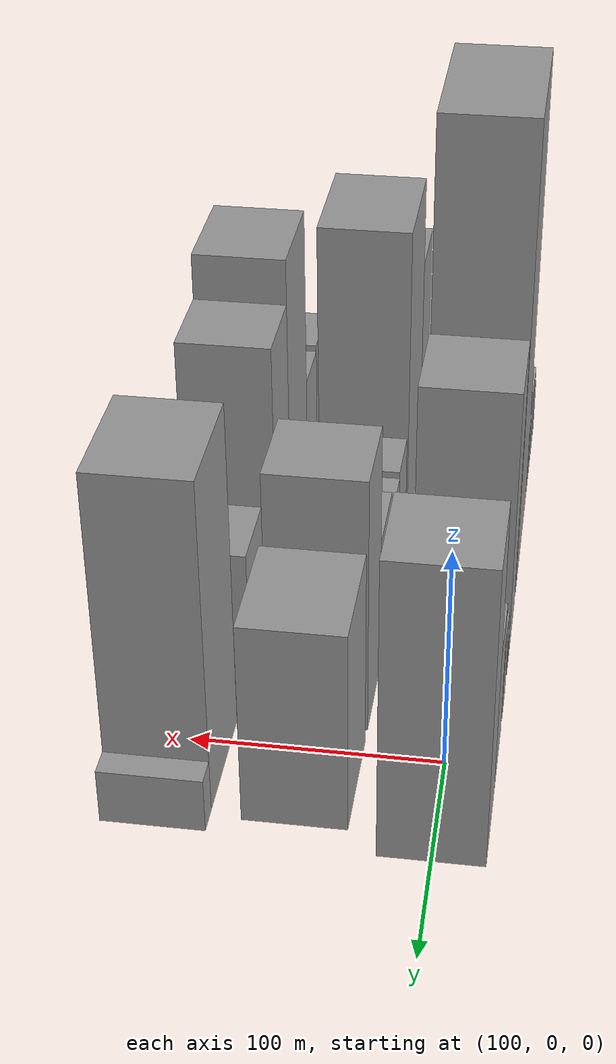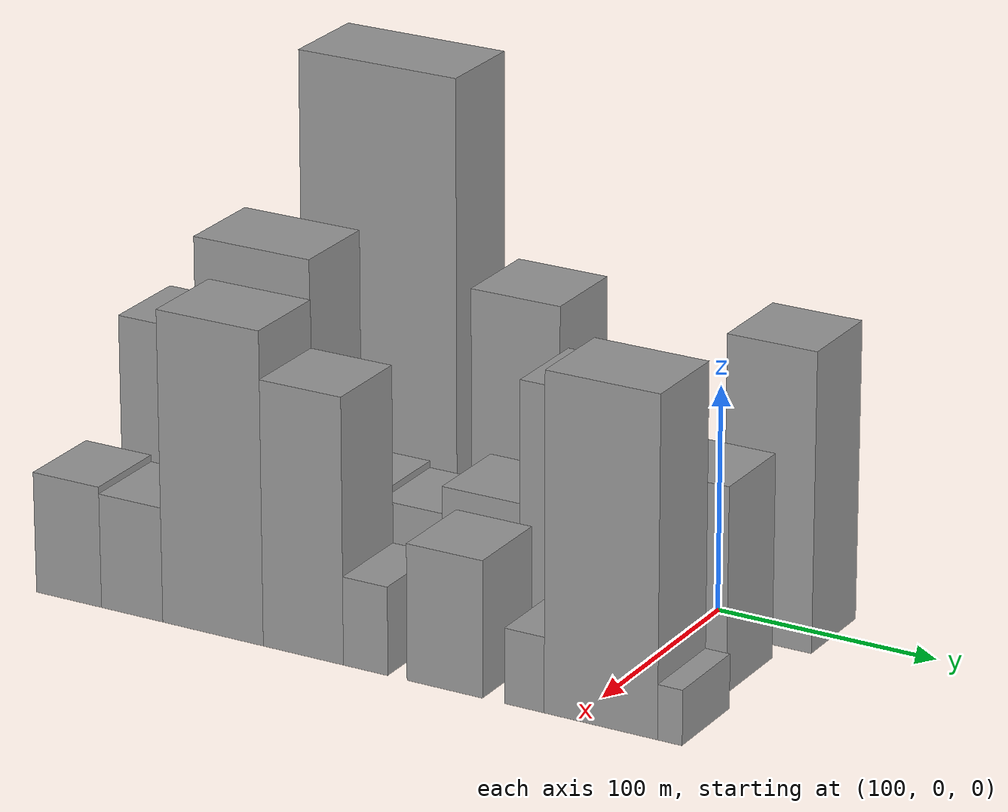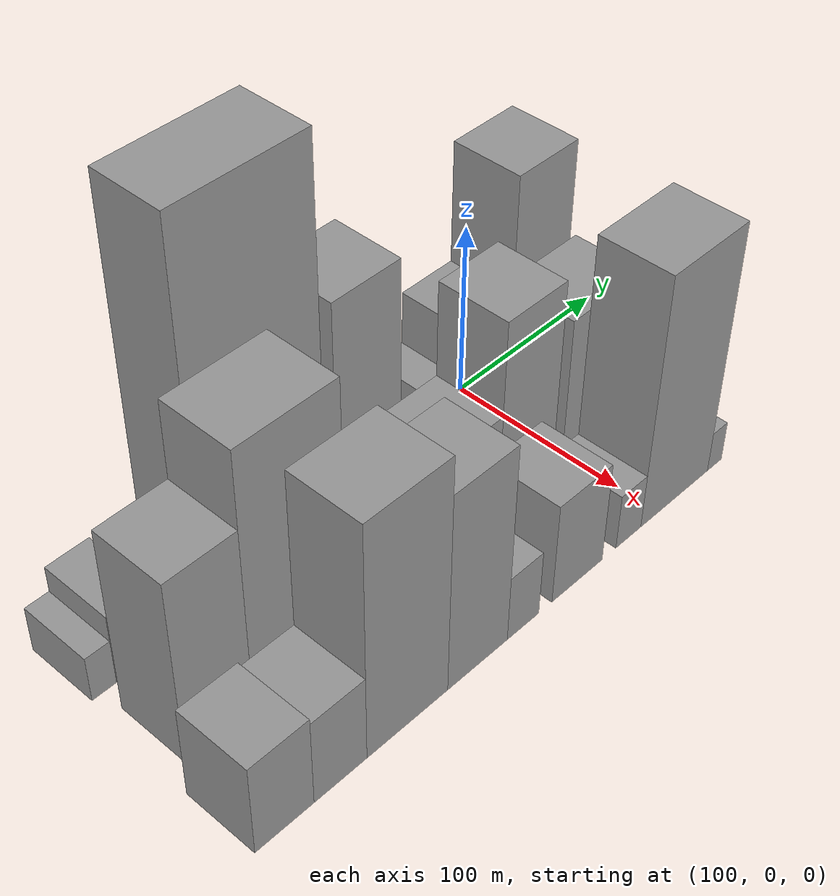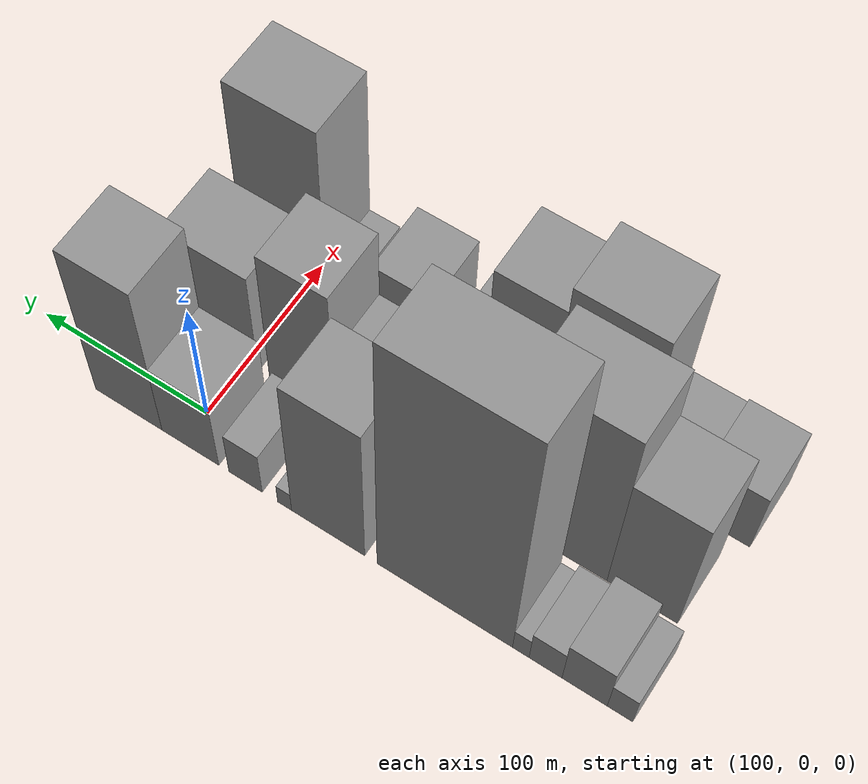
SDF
<sdf version="1.6">
 <world name="default">
  <model name="building_8">
   <static>1</static>
   <pose>100.0000 -245.4018 0 0.000000 0.000000 0.000000</pose>
   <link name="link">
    <pose>0 0 13.50 0 0 0</pose>
    <collision name="collision"><geometry><box><size>40.0000 13.3261 27.0000</size></box></geometry></collision>
    <visual name="visual">
     <cast_shadows>0</cast_shadows>
     <geometry><box><size>40.0000 13.3261 27.0000</size></box></geometry>
     <material>
      <script>
       <uri>model://grey_wall/materials/scripts</uri>
       <uri>model://grey_wall/materials/textures</uri>
       <name>vrc/grey_wall</name>
      </script>
     </material>
    </visual>
   </link>
  </model>
  <model name="building_9">
   <static>1</static>
   <pose>100.0000 -226.7744 0 0.000000 0.000000 0.000000</pose>
   <link name="link">
    <pose>0 0 21.00 0 0 0</pose>
    <collision name="collision"><geometry><box><size>40.0000 23.9287 42.0000</size></box></geometry></collision>
    <visual name="visual">
     <cast_shadows>0</cast_shadows>
     <geometry><box><size>40.0000 23.9287 42.0000</size></box></geometry>
     <material>
      <script>
       <uri>model://grey_wall/materials/scripts</uri>
       <uri>model://grey_wall/materials/textures</uri>
       <name>vrc/grey_wall</name>
      </script>
     </material>
    </visual>
   </link>
  </model>
  <model name="building_10">
   <static>1</static>
   <pose>100.0000 -205.9843 0 0.000000 0.000000 0.000000</pose>
   <link name="link">
    <pose>0 0 15.00 0 0 0</pose>
    <collision name="collision"><geometry><box><size>40.0000 17.6515 30.0000</size></box></geometry></collision>
    <visual name="visual">
     <cast_shadows>0</cast_shadows>
     <geometry><box><size>40.0000 17.6515 30.0000</size></box></geometry>
     <material>
      <script>
       <uri>model://grey_wall/materials/scripts</uri>
       <uri>model://grey_wall/materials/textures</uri>
       <name>vrc/grey_wall</name>
      </script>
     </material>
    </visual>
   </link>
  </model>
  <model name="building_11">
   <static>1</static>
   <pose>100.0000 -192.7051 0 0.000000 0.000000 0.000000</pose>
   <link name="link">
    <pose>0 0 10.50 0 0 0</pose>
    <collision name="collision"><geometry><box><size>40.0000 8.9070 21.0000</size></box></geometry></collision>
    <visual name="visual">
     <cast_shadows>0</cast_shadows>
     <geometry><box><size>40.0000 8.9070 21.0000</size></box></geometry>
     <material>
      <script>
       <uri>model://grey_wall/materials/scripts</uri>
       <uri>model://grey_wall/materials/textures</uri>
       <name>vrc/grey_wall</name>
      </script>
     </material>
    </visual>
   </link>
  </model>
  <model name="building_12">
   <static>1</static>
   <pose>100.0000 -150.8163 0 0.000000 0.000000 0.000000</pose>
   <link name="link">
    <pose>0 0 109.50 0 0 0</pose>
    <collision name="collision"><geometry><box><size>40.0000 74.8706 219.0000</size></box></geometry></collision>
    <visual name="visual">
     <cast_shadows>0</cast_shadows>
     <geometry><box><size>40.0000 74.8706 219.0000</size></box></geometry>
     <material>
      <script>
       <uri>model://grey_wall/materials/scripts</uri>
       <uri>model://grey_wall/materials/textures</uri>
       <name>vrc/grey_wall</name>
      </script>
     </material>
    </visual>
   </link>
  </model>
  <model name="building_13">
   <static>1</static>
   <pose>100.0000 -85.3873 0 0.000000 0.000000 0.000000</pose>
   <link name="link">
    <pose>0 0 64.50 0 0 0</pose>
    <collision name="collision"><geometry><box><size>40.0000 41.9874 129.0000</size></box></geometry></collision>
    <visual name="visual">
     <cast_shadows>0</cast_shadows>
     <geometry><box><size>40.0000 41.9874 129.0000</size></box></geometry>
     <material>
      <script>
       <uri>model://grey_wall/materials/scripts</uri>
       <uri>model://grey_wall/materials/textures</uri>
       <name>vrc/grey_wall</name>
      </script>
     </material>
    </visual>
   </link>
  </model>
  <model name="building_14">
   <static>1</static>
   <pose>100.0000 -60.3403 0 0.000000 0.000000 0.000000</pose>
   <link name="link">
    <pose>0 0 9.00 0 0 0</pose>
    <collision name="collision"><geometry><box><size>40.0000 8.1066 18.0000</size></box></geometry></collision>
    <visual name="visual">
     <cast_shadows>0</cast_shadows>
     <geometry><box><size>40.0000 8.1066 18.0000</size></box></geometry>
     <material>
      <script>
       <uri>model://grey_wall/materials/scripts</uri>
       <uri>model://grey_wall/materials/textures</uri>
       <name>vrc/grey_wall</name>
      </script>
     </material>
    </visual>
   </link>
  </model>
  <model name="building_15">
   <static>1</static>
   <pose>100.0000 -37.4372 0 0.000000 0.000000 0.000000</pose>
   <link name="link">
    <pose>0 0 19.50 0 0 0</pose>
    <collision name="collision"><geometry><box><size>40.0000 19.6997 39.0000</size></box></geometry></collision>
    <visual name="visual">
     <cast_shadows>0</cast_shadows>
     <geometry><box><size>40.0000 19.6997 39.0000</size></box></geometry>
     <material>
      <script>
       <uri>model://grey_wall/materials/scripts</uri>
       <uri>model://grey_wall/materials/textures</uri>
       <name>vrc/grey_wall</name>
      </script>
     </material>
    </visual>
   </link>
  </model>
  <model name="building_16">
   <static>1</static>
   <pose>100.0000 -4.4904 0 0.000000 0.000000 0.000000</pose>
   <link name="link">
    <pose>0 0 31.50 0 0 0</pose>
    <collision name="collision"><geometry><box><size>40.0000 34.1938 63.0000</size></box></geometry></collision>
    <visual name="visual">
     <cast_shadows>0</cast_shadows>
     <geometry><box><size>40.0000 34.1938 63.0000</size></box></geometry>
     <material>
      <script>
       <uri>model://grey_wall/materials/scripts</uri>
       <uri>model://grey_wall/materials/textures</uri>
       <name>vrc/grey_wall</name>
      </script>
     </material>
    </visual>
   </link>
  </model>
  <model name="building_17">
   <static>1</static>
   <pose>100.0000 32.9341 0 0.000000 0.000000 0.000000</pose>
   <link name="link">
    <pose>0 0 66.00 0 0 0</pose>
    <collision name="collision"><geometry><box><size>40.0000 40.6553 132.0000</size></box></geometry></collision>
    <visual name="visual">
     <cast_shadows>0</cast_shadows>
     <geometry><box><size>40.0000 40.6553 132.0000</size></box></geometry>
     <material>
      <script>
       <uri>model://grey_wall/materials/scripts</uri>
       <uri>model://grey_wall/materials/textures</uri>
       <name>vrc/grey_wall</name>
      </script>
     </material>
    </visual>
   </link>
  </model>
  <model name="building_45">
   <static>1</static>
   <pose>152.0000 -226.9275 0 0.000000 0.000000 0.000000</pose>
   <link name="link">
    <pose>0 0 54.00 0 0 0</pose>
    <collision name="collision"><geometry><box><size>40.0000 37.9365 108.0000</size></box></geometry></collision>
    <visual name="visual">
     <cast_shadows>0</cast_shadows>
     <geometry><box><size>40.0000 37.9365 108.0000</size></box></geometry>
     <material>
      <script>
       <uri>model://grey_wall/materials/scripts</uri>
       <uri>model://grey_wall/materials/textures</uri>
       <name>vrc/grey_wall</name>
      </script>
     </material>
    </visual>
   </link>
  </model>
  <model name="building_46">
   <static>1</static>
   <pose>152.0000 -180.2325 0 0.000000 0.000000 0.000000</pose>
   <link name="link">
    <pose>0 0 75.00 0 0 0</pose>
    <collision name="collision"><geometry><box><size>40.0000 55.4535 150.0000</size></box></geometry></collision>
    <visual name="visual">
     <cast_shadows>0</cast_shadows>
     <geometry><box><size>40.0000 55.4535 150.0000</size></box></geometry>
     <material>
      <script>
       <uri>model://grey_wall/materials/scripts</uri>
       <uri>model://grey_wall/materials/textures</uri>
       <name>vrc/grey_wall</name>
      </script>
     </material>
    </visual>
   </link>
  </model>
  <model name="building_47">
   <static>1</static>
   <pose>152.0000 -132.8605 0 0.000000 0.000000 0.000000</pose>
   <link name="link">
    <pose>0 0 27.00 0 0 0</pose>
    <collision name="collision"><geometry><box><size>40.0000 27.2906 54.0000</size></box></geometry></collision>
    <visual name="visual">
     <cast_shadows>0</cast_shadows>
     <geometry><box><size>40.0000 27.2906 54.0000</size></box></geometry>
     <material>
      <script>
       <uri>model://grey_wall/materials/scripts</uri>
       <uri>model://grey_wall/materials/textures</uri>
       <name>vrc/grey_wall</name>
      </script>
     </material>
    </visual>
   </link>
  </model>
  <model name="building_48">
   <static>1</static>
   <pose>152.0000 -104.7523 0 0.000000 0.000000 0.000000</pose>
   <link name="link">
    <pose>0 0 25.50 0 0 0</pose>
    <collision name="collision"><geometry><box><size>40.0000 28.9257 51.0000</size></box></geometry></collision>
    <visual name="visual">
     <cast_shadows>0</cast_shadows>
     <geometry><box><size>40.0000 28.9257 51.0000</size></box></geometry>
     <material>
      <script>
       <uri>model://grey_wall/materials/scripts</uri>
       <uri>model://grey_wall/materials/textures</uri>
       <name>vrc/grey_wall</name>
      </script>
     </material>
    </visual>
   </link>
  </model>
  <model name="building_49">
   <static>1</static>
   <pose>152.0000 -72.0137 0 0.000000 0.000000 0.000000</pose>
   <link name="link">
    <pose>0 0 31.50 0 0 0</pose>
    <collision name="collision"><geometry><box><size>40.0000 36.5515 63.0000</size></box></geometry></collision>
    <visual name="visual">
     <cast_shadows>0</cast_shadows>
     <geometry><box><size>40.0000 36.5515 63.0000</size></box></geometry>
     <material>
      <script>
       <uri>model://grey_wall/materials/scripts</uri>
       <uri>model://grey_wall/materials/textures</uri>
       <name>vrc/grey_wall</name>
      </script>
     </material>
    </visual>
   </link>
  </model>
  <model name="building_50">
   <static>1</static>
   <pose>152.0000 -34.3291 0 0.000000 0.000000 0.000000</pose>
   <link name="link">
    <pose>0 0 58.50 0 0 0</pose>
    <collision name="collision"><geometry><box><size>40.0000 38.8177 117.0000</size></box></geometry></collision>
    <visual name="visual">
     <cast_shadows>0</cast_shadows>
     <geometry><box><size>40.0000 38.8177 117.0000</size></box></geometry>
     <material>
      <script>
       <uri>model://grey_wall/materials/scripts</uri>
       <uri>model://grey_wall/materials/textures</uri>
       <name>vrc/grey_wall</name>
      </script>
     </material>
    </visual>
   </link>
  </model>
  <model name="building_51">
   <static>1</static>
   <pose>152.0000 16.7589 0 0.000000 0.000000 0.000000</pose>
   <link name="link">
    <pose>0 0 45.00 0 0 0</pose>
    <collision name="collision"><geometry><box><size>40.0000 49.3583 90.0000</size></box></geometry></collision>
    <visual name="visual">
     <cast_shadows>0</cast_shadows>
     <geometry><box><size>40.0000 49.3583 90.0000</size></box></geometry>
     <material>
      <script>
       <uri>model://grey_wall/materials/scripts</uri>
       <uri>model://grey_wall/materials/textures</uri>
       <name>vrc/grey_wall</name>
      </script>
     </material>
    </visual>
   </link>
  </model>
  <model name="building_80">
   <static>1</static>
   <pose>204.0000 -239.5134 0 0.000000 0.000000 0.000000</pose>
   <link name="link">
    <pose>0 0 27.00 0 0 0</pose>
    <collision name="collision"><geometry><box><size>40.0000 32.2547 54.0000</size></box></geometry></collision>
    <visual name="visual">
     <cast_shadows>0</cast_shadows>
     <geometry><box><size>40.0000 32.2547 54.0000</size></box></geometry>
     <material>
      <script>
       <uri>model://grey_wall/materials/scripts</uri>
       <uri>model://grey_wall/materials/textures</uri>
       <name>vrc/grey_wall</name>
      </script>
     </material>
    </visual>
   </link>
  </model>
  <model name="building_81">
   <static>1</static>
   <pose>204.0000 -208.3445 0 0.000000 0.000000 0.000000</pose>
   <link name="link">
    <pose>0 0 25.50 0 0 0</pose>
    <collision name="collision"><geometry><box><size>40.0000 30.0831 51.0000</size></box></geometry></collision>
    <visual name="visual">
     <cast_shadows>0</cast_shadows>
     <geometry><box><size>40.0000 30.0831 51.0000</size></box></geometry>
     <material>
      <script>
       <uri>model://grey_wall/materials/scripts</uri>
       <uri>model://grey_wall/materials/textures</uri>
       <name>vrc/grey_wall</name>
      </script>
     </material>
    </visual>
   </link>
  </model>
  <model name="building_82">
   <static>1</static>
   <pose>204.0000 -168.9880 0 0.000000 0.000000 0.000000</pose>
   <link name="link">
    <pose>0 0 69.00 0 0 0</pose>
    <collision name="collision"><geometry><box><size>40.0000 48.6300 138.0000</size></box></geometry></collision>
    <visual name="visual">
     <cast_shadows>0</cast_shadows>
     <geometry><box><size>40.0000 48.6300 138.0000</size></box></geometry>
     <material>
      <script>
       <uri>model://grey_wall/materials/scripts</uri>
       <uri>model://grey_wall/materials/textures</uri>
       <name>vrc/grey_wall</name>
      </script>
     </material>
    </visual>
   </link>
  </model>
  <model name="building_83">
   <static>1</static>
   <pose>204.0000 -125.5895 0 0.000000 0.000000 0.000000</pose>
   <link name="link">
    <pose>0 0 58.50 0 0 0</pose>
    <collision name="collision"><geometry><box><size>40.0000 38.1671 117.0000</size></box></geometry></collision>
    <visual name="visual">
     <cast_shadows>0</cast_shadows>
     <geometry><box><size>40.0000 38.1671 117.0000</size></box></geometry>
     <material>
      <script>
       <uri>model://grey_wall/materials/scripts</uri>
       <uri>model://grey_wall/materials/textures</uri>
       <name>vrc/grey_wall</name>
      </script>
     </material>
    </visual>
   </link>
  </model>
  <model name="building_84">
   <static>1</static>
   <pose>204.0000 -96.0280 0 0.000000 0.000000 0.000000</pose>
   <link name="link">
    <pose>0 0 19.50 0 0 0</pose>
    <collision name="collision"><geometry><box><size>40.0000 20.9558 39.0000</size></box></geometry></collision>
    <visual name="visual">
     <cast_shadows>0</cast_shadows>
     <geometry><box><size>40.0000 20.9558 39.0000</size></box></geometry>
     <material>
      <script>
       <uri>model://grey_wall/materials/scripts</uri>
       <uri>model://grey_wall/materials/textures</uri>
       <name>vrc/grey_wall</name>
      </script>
     </material>
    </visual>
   </link>
  </model>
  <model name="building_85">
   <static>1</static>
   <pose>204.0000 -58.9765 0 0.000000 0.000000 0.000000</pose>
   <link name="link">
    <pose>0 0 30.00 0 0 0</pose>
    <collision name="collision"><geometry><box><size>40.0000 35.1472 60.0000</size></box></geometry></collision>
    <visual name="visual">
     <cast_shadows>0</cast_shadows>
     <geometry><box><size>40.0000 35.1472 60.0000</size></box></geometry>
     <material>
      <script>
       <uri>model://grey_wall/materials/scripts</uri>
       <uri>model://grey_wall/materials/textures</uri>
       <name>vrc/grey_wall</name>
      </script>
     </material>
    </visual>
   </link>
  </model>
  <model name="building_86">
   <static>1</static>
   <pose>204.0000 -22.3060 0 0.000000 0.000000 0.000000</pose>
   <link name="link">
    <pose>0 0 16.50 0 0 0</pose>
    <collision name="collision"><geometry><box><size>40.0000 18.1936 33.0000</size></box></geometry></collision>
    <visual name="visual">
     <cast_shadows>0</cast_shadows>
     <geometry><box><size>40.0000 18.1936 33.0000</size></box></geometry>
     <material>
      <script>
       <uri>model://grey_wall/materials/scripts</uri>
       <uri>model://grey_wall/materials/textures</uri>
       <name>vrc/grey_wall</name>
      </script>
     </material>
    </visual>
   </link>
  </model>
  <model name="building_87">
   <static>1</static>
   <pose>204.0000 12.4140 0 0.000000 0.000000 0.000000</pose>
   <link name="link">
    <pose>0 0 73.50 0 0 0</pose>
    <collision name="collision"><geometry><box><size>40.0000 51.2464 147.0000</size></box></geometry></collision>
    <visual name="visual">
     <cast_shadows>0</cast_shadows>
     <geometry><box><size>40.0000 51.2464 147.0000</size></box></geometry>
     <material>
      <script>
       <uri>model://grey_wall/materials/scripts</uri>
       <uri>model://grey_wall/materials/textures</uri>
       <name>vrc/grey_wall</name>
      </script>
     </material>
    </visual>
   </link>
  </model>
  <model name="building_88">
   <static>1</static>
   <pose>204.0000 43.5739 0 0.000000 0.000000 0.000000</pose>
   <link name="link">
    <pose>0 0 12.00 0 0 0</pose>
    <collision name="collision"><geometry><box><size>40.0000 11.0734 24.0000</size></box></geometry></collision>
    <visual name="visual">
     <cast_shadows>0</cast_shadows>
     <geometry><box><size>40.0000 11.0734 24.0000</size></box></geometry>
     <material>
      <script>
       <uri>model://grey_wall/materials/scripts</uri>
       <uri>model://grey_wall/materials/textures</uri>
       <name>vrc/grey_wall</name>
      </script>
     </material>
    </visual>
   </link>
  </model>
 </world>
</sdf>
